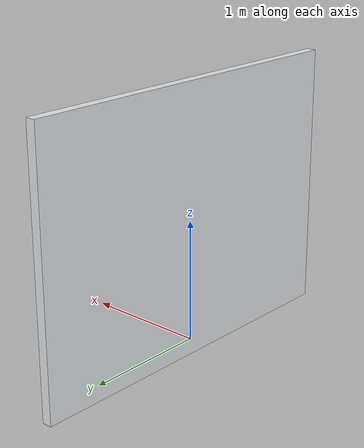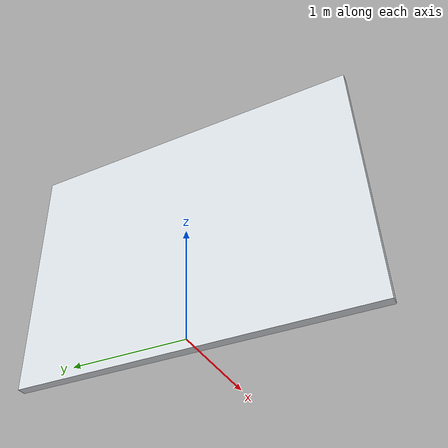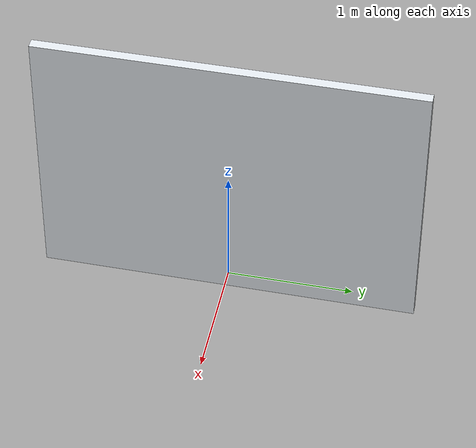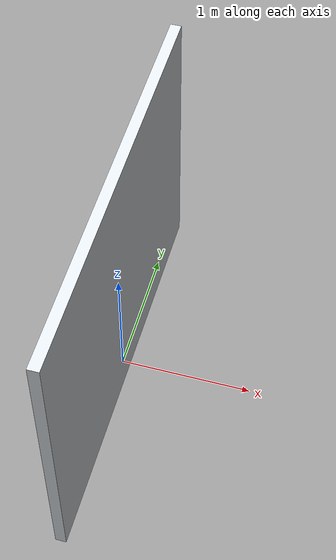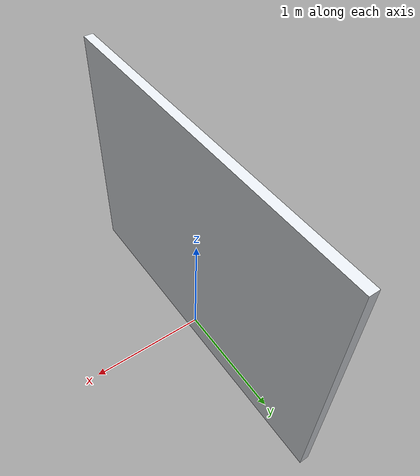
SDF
<?xml version='1.0' encoding='utf-8'?>
<sdf version="1.6">
  <model name="aws_robomaker_hospital_curtain_half_open_01">
    <static>true</static>
    <link name="link">
      <collision name="collision_1">
        <pose>0 0 1 0 0 0</pose>
        <geometry>
          <box>
            <size>0.08 3 2.2</size>
          </box>
        </geometry>
      </collision>
      <visual name="visual_1">
        <pose>0 0 1 0 0 0</pose>
        <geometry>
          <box>
            <size>0.08 3 2.2</size>
          </box>
        </geometry>
        <material>
          <ambient>0.88 0.9 0.92 1</ambient>
          <diffuse>0.88 0.9 0.92 1</diffuse>
          <specular>0.08 0.08 0.08 1</specular>
        </material>
      </visual>
    </link>
  </model>
</sdf>
